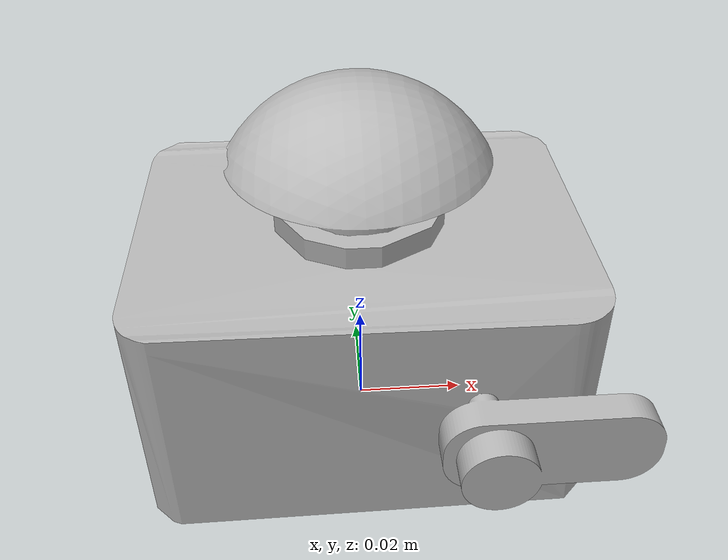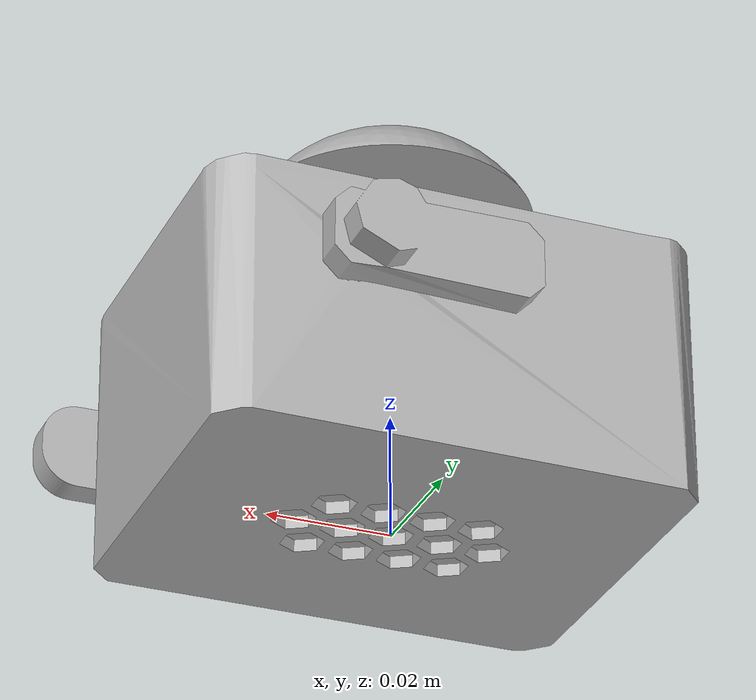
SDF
<sdf version="1.7">
  <model name="model">
    <link name="body">
      <inertial>
        <pose>0.000140893756 -3.81281063e-12 0.0222411843 0 0 0</pose>
        <mass>0.0546196678</mass>
        <inertia>
          <ixx>4.00054126e-05</ixx>
          <ixy>4.42605896e-14</ixy>
          <ixz>7.7537018e-08</ixz>
          <iyy>5.1950393e-05</iyy>
          <iyz>6.90946541e-16</iyz>
          <izz>6.41572432e-05</izz>
        </inertia>
      </inertial>
      <visual name="body_visual">
        <geometry>
          <mesh>
            <uri>meshes/body.stl</uri>
            <scale>0.001 0.001 0.001</scale>
          </mesh>
        </geometry>
      </visual>
      <collision name="body_collision">
        <geometry>
          <mesh>
            <uri>meshes/body_collision.stl</uri>
            <scale>0.001 0.001 0.001</scale>
          </mesh>
        </geometry>
      </collision>
    </link>
    <link name="arm_l">
      <inertial>
        <pose>0.0111812127 0.0401484551 0.026 0 0 0</pose>
        <mass>0.00364086718</mass>
        <inertia>
          <ixx>7.95204366e-08</ixx>
          <ixy>-1.60987397e-08</ixy>
          <ixz>4.33064997e-22</ixz>
          <iyy>3.45914757e-07</iyy>
          <iyz>5.77419996e-22</iyz>
          <izz>3.28699215e-07</izz>
        </inertia>
      </inertial>
      <visual name="arm_l_visual">
        <geometry>
          <mesh>
            <uri>meshes/arm_l.stl</uri>
            <scale>0.001 0.001 0.001</scale>
          </mesh>
        </geometry>
      </visual>
      <collision name="arm_l_collision">
        <geometry>
          <mesh>
            <uri>meshes/arm_l_collision.stl</uri>
            <scale>0.001 0.001 0.001</scale>
          </mesh>
        </geometry>
      </collision>
    </link>
    <link name="arm_r">
      <inertial>
        <pose>0.0248187873 -0.0401484551 0.026 0 0 0</pose>
        <mass>0.00364086715</mass>
        <inertia>
          <ixx>7.95204358e-08</ixx>
          <ixy>-1.60987391e-08</ixy>
          <ixz>-1.44354999e-21</ixz>
          <iyy>3.45914748e-07</iyy>
          <iyz>1.15483999e-21</iyz>
          <izz>3.28699206e-07</izz>
        </inertia>
      </inertial>
      <visual name="arm_r_visual">
        <geometry>
          <mesh>
            <uri>meshes/arm_r.stl</uri>
            <scale>0.001 0.001 0.001</scale>
          </mesh>
        </geometry>
      </visual>
      <collision name="arm_r_collision">
        <geometry>
          <mesh>
            <uri>meshes/arm_r_collision.stl</uri>
            <scale>0.001 0.001 0.001</scale>
          </mesh>
        </geometry>
      </collision>
    </link>
    <link name="head">
      <inertial>
        <pose>9.00477979e-06 1.62905618e-14 0.0571533131 0 0 0</pose>
        <mass>0.0188317912</mass>
        <inertia>
          <ixx>1.89734192e-06</ixx>
          <ixy>6.60643229e-18</ixy>
          <ixz>2.75539504e-10</ixz>
          <iyy>1.89369465e-06</iyy>
          <iyz>1.51377629e-19</iyz>
          <izz>2.79788128e-06</izz>
        </inertia>
      </inertial>
      <visual name="head_visual">
        <geometry>
          <mesh>
            <uri>meshes/head.stl</uri>
            <scale>0.001 0.001 0.001</scale>
          </mesh>
        </geometry>
      </visual>
      <collision name="head_collision">
        <geometry>
          <mesh>
            <uri>meshes/head_collision.stl</uri>
            <scale>0.001 0.001 0.001</scale>
          </mesh>
        </geometry>
      </collision>
    </link>
    <link name="pcb">
      <inertial>
        <pose>0.00837585779 0 0.00997300979 0 0 0</pose>
        <mass>0.00793897658</mass>
        <inertia>
          <ixx>1.00081154e-06</ixx>
          <ixy>-0</ixy>
          <ixz>-2.0128195e-07</ixz>
          <iyy>1.64556149e-06</iyy>
          <iyz>-7.21774995e-24</iyz>
          <izz>2.46668842e-06</izz>
        </inertia>
      </inertial>
      <visual name="pcb_visual">
        <geometry>
          <mesh>
            <uri>meshes/pcb.stl</uri>
            <scale>0.001 0.001 0.001</scale>
          </mesh>
        </geometry>
      </visual>
      <collision name="pcb_collision">
        <geometry>
          <mesh>
            <uri>meshes/pcb_collision.stl</uri>
            <scale>0.001 0.001 0.001</scale>
          </mesh>
        </geometry>
      </collision>
    </link>
    <link name="servo_l">
      <inertial>
        <pose>-0.0203803824 0.0120000002 0.0215341921 0 0 0</pose>
        <mass>0.00878229194</mass>
        <inertia>
          <ixx>5.59007982e-07</ixx>
          <ixy>-6.99479366e-16</ixy>
          <ixz>4.19450663e-08</ixz>
          <iyy>8.79547159e-07</iyy>
          <iyz>1.68561196e-15</iyz>
          <izz>5.3350799e-07</izz>
        </inertia>
      </inertial>
      <visual name="servo_l_visual">
        <geometry>
          <mesh>
            <uri>meshes/servo_l.stl</uri>
            <scale>0.001 0.001 0.001</scale>
          </mesh>
        </geometry>
      </visual>
      <collision name="servo_l_collision">
        <geometry>
          <mesh>
            <uri>meshes/servo_l_collision.stl</uri>
            <scale>0.001 0.001 0.001</scale>
          </mesh>
        </geometry>
      </collision>
    </link>
    <link name="servo_r">
      <inertial>
        <pose>-0.0203803824 -0.0120000002 0.0215341921 0 0 0</pose>
        <mass>0.00878229194</mass>
        <inertia>
          <ixx>5.59007982e-07</ixx>
          <ixy>6.99479366e-16</ixy>
          <ixz>4.19450663e-08</ixz>
          <iyy>8.79547159e-07</iyy>
          <iyz>-1.68561167e-15</iyz>
          <izz>5.3350799e-07</izz>
        </inertia>
      </inertial>
      <visual name="servo_r_visual">
        <geometry>
          <mesh>
            <uri>meshes/servo_r.stl</uri>
            <scale>0.001 0.001 0.001</scale>
          </mesh>
        </geometry>
      </visual>
      <collision name="servo_r_collision">
        <geometry>
          <mesh>
            <uri>meshes/servo_r_collision.stl</uri>
            <scale>0.001 0.001 0.001</scale>
          </mesh>
        </geometry>
      </collision>
    </link>
    <joint name="arm_l_pitch" type="revolute">
      <parent>body</parent>
      <child>arm_l</child>
      <pose>0.018 0.037 0.026 0 0 0</pose>
      <axis>
        <xyz>0 1 0</xyz>
        <limit>
          <lower>-0.698131701</lower>
          <upper>1.74532925</upper>
        </limit>
      </axis>
    </joint>
    <joint name="arm_r_pitch" type="revolute">
      <parent>body</parent>
      <child>arm_r</child>
      <pose>0.018 -0.037 0.026 0 0 0</pose>
      <axis>
        <xyz>0 1 0</xyz>
        <limit>
          <lower>-0.698131701</lower>
          <upper>1.74532925</upper>
        </limit>
      </axis>
    </joint>
    <joint name="head_pan" type="revolute">
      <parent>body</parent>
      <child>head</child>
      <pose>0 0 0.046 0 0 0</pose>
      <axis>
        <xyz>0 0 1</xyz>
        <limit>
          <lower>-2.0943951</lower>
          <upper>2.0943951</upper>
        </limit>
      </axis>
    </joint>
    <joint name="body_to_pcb" type="fixed">
      <parent>body</parent>
      <child>pcb</child>
      <pose>0 0 0 0 0 0</pose>
    </joint>
    <joint name="body_to_servo_l" type="fixed">
      <parent>body</parent>
      <child>servo_l</child>
      <pose>0 0 0 0 0 0</pose>
    </joint>
    <joint name="body_to_servo_r" type="fixed">
      <parent>body</parent>
      <child>servo_r</child>
      <pose>0 0 0 0 0 0</pose>
    </joint>
  </model>
</sdf>
